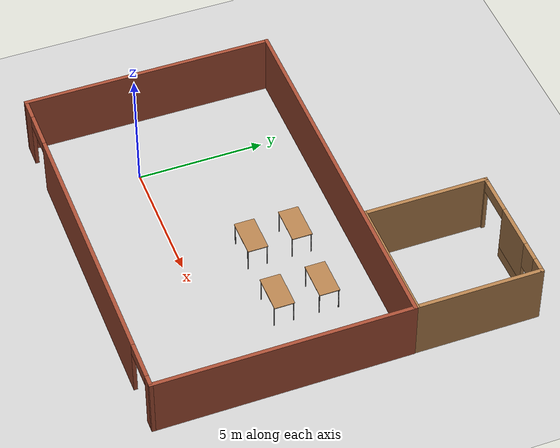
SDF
<sdf version="1.6">
 <world name="default">
  <model name="ground_plane">
   <static>1</static>
   <link name="link">
    <collision name="collision">
     <geometry><plane><normal>0 0 1</normal><size>100 100</size></plane></geometry>
     <surface>
      <contact><collide_bitmask>65535</collide_bitmask></contact>
      <friction><ode><mu>100</mu><mu2>50</mu2></ode></friction>
     </surface>
    </collision>
    <visual name="visual">
     <cast_shadows>0</cast_shadows>
     <geometry><plane><normal>0 0 1</normal><size>100 100</size></plane></geometry>
     <material>
      <script><uri>file://media/materials/scripts/gazebo.material</uri><name>Gazebo/Grey</name></script>
     </material>
    </visual>
   </link>
  </model>
  <model name="classroom">
   <pose>4.425 1.455 0 0 -0 0</pose>
   <link name="Wall_0">
    <collision name="Wall_0_Collision">
     <geometry><box><size>10 0.15 2.5</size></box></geometry>
     <pose>0 0 1.25 0 -0 0</pose>
    </collision>
    <visual name="Wall_0_Visual">
     <pose>0 0 1.25 0 -0 0</pose>
     <geometry><box><size>10 0.15 2.5</size></box></geometry>
     <material>
      <script><uri>file://media/materials/scripts/gazebo.material</uri><name>Gazebo/Bricks</name></script>
      <ambient>1 1 1 1</ambient>
     </material>
     <meta><layer>0</layer></meta>
    </visual>
    <pose>-7.425 0 0 0 -0 1.5708</pose>
   </link>
   <link name="Wall_2">
    <collision name="Wall_2_Collision">
     <geometry><box><size>15 0.15 2.5</size></box></geometry>
     <pose>0 0 1.25 0 -0 0</pose>
    </collision>
    <visual name="Wall_2_Visual">
     <pose>0 0 1.25 0 -0 0</pose>
     <geometry><box><size>15 0.15 2.5</size></box></geometry>
     <material>
      <script><uri>file://media/materials/scripts/gazebo.material</uri><name>Gazebo/Bricks</name></script>
      <ambient>1 1 1 1</ambient>
     </material>
     <meta><layer>0</layer></meta>
    </visual>
    <pose>0 4.925 0 0 -0 0</pose>
   </link>
   <link name="Wall_4">
    <collision name="Wall_4_Collision">
     <geometry><box><size>10 0.15 2.5</size></box></geometry>
     <pose>0 0 1.25 0 -0 0</pose>
    </collision>
    <visual name="Wall_4_Visual">
     <pose>0 0 1.25 0 -0 0</pose>
     <geometry><box><size>10 0.15 2.5</size></box></geometry>
     <material>
      <script><uri>file://media/materials/scripts/gazebo.material</uri><name>Gazebo/Bricks</name></script>
      <ambient>1 1 1 1</ambient>
     </material>
     <meta><layer>0</layer></meta>
    </visual>
    <pose>7.425 0 0 0 0 -1.5708</pose>
   </link>
   <link name="Wall_6">
    <pose>0 -4.925 0 0 -0 0</pose>
    <visual name="Wall_6_Visual_0">
     <pose>-7.03429 0 1.25 0 -0 0</pose>
     <geometry><box><size>0.931421 0.15 2.5</size></box></geometry>
     <material>
      <script><uri>file://media/materials/scripts/gazebo.material</uri><name>Gazebo/Bricks</name></script>
      <ambient>1 1 1 1</ambient>
     </material>
     <meta><layer>0</layer></meta>
    </visual>
    <collision name="Wall_6_Collision_0">
     <geometry><box><size>0.931421 0.15 2.5</size></box></geometry>
     <pose>-7.03429 0 1.25 0 -0 0</pose>
    </collision>
    <visual name="Wall_6_Visual_1">
     <pose>0.218509 0 1.25 0 -0 0</pose>
     <geometry><box><size>10.5742 0.15 2.5</size></box></geometry>
     <material>
      <script><uri>file://media/materials/scripts/gazebo.material</uri><name>Gazebo/Bricks</name></script>
      <ambient>1 1 1 1</ambient>
     </material>
     <meta><layer>0</layer></meta>
    </visual>
    <collision name="Wall_6_Collision_1">
     <geometry><box><size>10.5742 0.15 2.5</size></box></geometry>
     <pose>0.218509 0 1.25 0 -0 0</pose>
    </collision>
    <visual name="Wall_6_Visual_2">
     <pose>7.2528 0 1.25 0 -0 0</pose>
     <geometry><box><size>0.494402 0.15 2.5</size></box></geometry>
     <material>
      <script><uri>file://media/materials/scripts/gazebo.material</uri><name>Gazebo/Bricks</name></script>
      <ambient>1 1 1 1</ambient>
     </material>
     <meta><layer>0</layer></meta>
    </visual>
    <collision name="Wall_6_Collision_2">
     <geometry><box><size>0.494402 0.15 2.5</size></box></geometry>
     <pose>7.2528 0 1.25 0 -0 0</pose>
    </collision>
    <visual name="Wall_6_Visual_3">
     <pose>-5.81858 0 2.25 0 -0 0</pose>
     <geometry><box><size>1.5 0.15 0.5</size></box></geometry>
     <material>
      <script><uri>file://media/materials/scripts/gazebo.material</uri><name>Gazebo/Bricks</name></script>
      <ambient>1 1 1 1</ambient>
     </material>
     <meta><layer>0</layer></meta>
    </visual>
    <collision name="Wall_6_Collision_3">
     <geometry><box><size>1.5 0.15 0.5</size></box></geometry>
     <pose>-5.81858 0 2.25 0 -0 0</pose>
    </collision>
    <visual name="Wall_6_Visual_4">
     <pose>6.2556 0 2.25 0 -0 0</pose>
     <geometry><box><size>1.5 0.15 0.5</size></box></geometry>
     <material>
      <script><uri>file://media/materials/scripts/gazebo.material</uri><name>Gazebo/Bricks</name></script>
      <ambient>1 1 1 1</ambient>
     </material>
     <meta><layer>0</layer></meta>
    </visual>
    <collision name="Wall_6_Collision_4">
     <geometry><box><size>1.5 0.15 0.5</size></box></geometry>
     <pose>6.2556 0 2.25 0 -0 0</pose>
    </collision>
   </link>
   <static>1</static>
  </model>
  <model name="studio">
   <pose>9.41356 8.87492 0 0 -0 3.14131</pose>
   <link name="Wall_10">
    <collision name="Wall_10_Collision">
     <geometry><box><size>5 0.15 2.5</size></box></geometry>
     <pose>0 0 1.25 0 -0 0</pose>
    </collision>
    <visual name="Wall_10_Visual">
     <pose>0 0 1.25 0 -0 0</pose>
     <geometry><box><size>5 0.15 2.5</size></box></geometry>
     <material>
      <script><uri>file://media/materials/scripts/gazebo.material</uri><name>Gazebo/Wood</name></script>
      <ambient>1 1 1 1</ambient>
     </material>
     <meta><layer>0</layer></meta>
    </visual>
    <pose>0 2.42482 0 0 0 -7.3e-05</pose>
   </link>
   <link name="Wall_13">
    <collision name="Wall_13_Collision">
     <geometry><box><size>5 0.15 2.5</size></box></geometry>
     <pose>0 0 1.25 0 -0 0</pose>
    </collision>
    <visual name="Wall_13_Visual">
     <pose>0 0 1.25 0 -0 0</pose>
     <geometry><box><size>5 0.15 2.5</size></box></geometry>
     <material>
      <script><uri>file://media/materials/scripts/gazebo.material</uri><name>Gazebo/Wood</name></script>
      <ambient>1 1 1 1</ambient>
     </material>
     <meta><layer>0</layer></meta>
    </visual>
    <pose>-2.42502 -3e-06 0 0 0 -1.5708</pose>
   </link>
   <link name="Wall_15">
    <pose>-2e-05 -2.425 0 0 -0 0</pose>
    <visual name="Wall_15_Visual_0">
     <pose>-2.17395 0 1.25 0 -0 0</pose>
     <geometry><box><size>0.652095 0.15 2.5</size></box></geometry>
     <material>
      <script><uri>file://media/materials/scripts/gazebo.material</uri><name>Gazebo/Wood</name></script>
      <ambient>1 1 1 1</ambient>
     </material>
     <meta><layer>0</layer></meta>
    </visual>
    <collision name="Wall_15_Collision_0">
     <geometry><box><size>0.652095 0.15 2.5</size></box></geometry>
     <pose>-2.17395 0 1.25 0 -0 0</pose>
    </collision>
    <visual name="Wall_15_Visual_1">
     <pose>2.38574 0 1.25 0 -0 0</pose>
     <geometry><box><size>0.228515 0.15 2.5</size></box></geometry>
     <material>
      <script><uri>file://media/materials/scripts/gazebo.material</uri><name>Gazebo/Wood</name></script>
      <ambient>1 1 1 1</ambient>
     </material>
     <meta><layer>0</layer></meta>
    </visual>
    <collision name="Wall_15_Collision_1">
     <geometry><box><size>0.228515 0.15 2.5</size></box></geometry>
     <pose>2.38574 0 1.25 0 -0 0</pose>
    </collision>
    <visual name="Wall_15_Visual_2">
     <pose>-0.53821 0 0.25 0 -0 0</pose>
     <geometry><box><size>2.61939 0.15 0.5</size></box></geometry>
     <material>
      <script><uri>file://media/materials/scripts/gazebo.material</uri><name>Gazebo/Wood</name></script>
      <ambient>1 1 1 1</ambient>
     </material>
     <meta><layer>0</layer></meta>
    </visual>
    <collision name="Wall_15_Collision_2">
     <geometry><box><size>2.61939 0.15 0.5</size></box></geometry>
     <pose>-0.53821 0 0.25 0 -0 0</pose>
    </collision>
    <visual name="Wall_15_Visual_3">
     <pose>-0.13821 0 1.5 0 -0 0</pose>
     <geometry><box><size>1.81939 0.15 2</size></box></geometry>
     <material>
      <script><uri>file://media/materials/scripts/gazebo.material</uri><name>Gazebo/Wood</name></script>
      <ambient>1 1 1 1</ambient>
     </material>
     <meta><layer>0</layer></meta>
    </visual>
    <collision name="Wall_15_Collision_3">
     <geometry><box><size>1.81939 0.15 2</size></box></geometry>
     <pose>-0.13821 0 1.5 0 -0 0</pose>
    </collision>
    <visual name="Wall_15_Visual_4">
     <pose>-1.4479 0 1.9 0 -0 0</pose>
     <geometry><box><size>0.8 0.15 1.2</size></box></geometry>
     <material>
      <script><uri>file://media/materials/scripts/gazebo.material</uri><name>Gazebo/Wood</name></script>
      <ambient>1 1 1 1</ambient>
     </material>
     <meta><layer>0</layer></meta>
    </visual>
    <collision name="Wall_15_Collision_4">
     <geometry><box><size>0.8 0.15 1.2</size></box></geometry>
     <pose>-1.4479 0 1.9 0 -0 0</pose>
    </collision>
    <visual name="Wall_15_Visual_5">
     <pose>1.52148 0 2.25 0 -0 0</pose>
     <geometry><box><size>1.5 0.15 0.5</size></box></geometry>
     <material>
      <script><uri>file://media/materials/scripts/gazebo.material</uri><name>Gazebo/Wood</name></script>
      <ambient>1 1 1 1</ambient>
     </material>
     <meta><layer>0</layer></meta>
    </visual>
    <collision name="Wall_15_Collision_5">
     <geometry><box><size>1.5 0.15 0.5</size></box></geometry>
     <pose>1.52148 0 2.25 0 -0 0</pose>
    </collision>
   </link>
   <link name="Wall_16">
    <collision name="Wall_16_Collision">
     <geometry><box><size>4.99965 0.15 2.5</size></box></geometry>
     <pose>0 0 1.25 0 -0 0</pose>
    </collision>
    <visual name="Wall_16_Visual">
     <pose>0 0 1.25 0 -0 0</pose>
     <geometry><box><size>4.99965 0.15 2.5</size></box></geometry>
     <material>
      <script><uri>file://media/materials/scripts/gazebo.material</uri><name>Gazebo/Wood</name></script>
      <ambient>1 1 1 1</ambient>
     </material>
     <meta><layer>0</layer></meta>
    </visual>
    <pose>2.425 -0.00018 0 0 -0 1.57079</pose>
   </link>
   <static>1</static>
  </model>
  <model name="table_11">
   <static>1</static>
   <link name="link">
    <collision name="surface">
     <pose>0 0 1 0 -0 0</pose>
     <geometry><box><size>1.5 0.8 0.03</size></box></geometry>
     <surface><friction><ode><mu>0.6</mu><mu2>0.6</mu2></ode></friction></surface>
    </collision>
    <visual name="visual1">
     <pose>0 0 1 0 -0 0</pose>
     <geometry><box><size>1.5 0.8 0.03</size></box></geometry>
     <material>
      <script><uri>file://media/materials/scripts/gazebo.material</uri><name>Gazebo/Wood</name></script>
     </material>
    </visual>
    <collision name="front_left_leg">
     <pose>0.68 0.38 0.5 0 -0 0</pose>
     <geometry><cylinder><radius>0.02</radius><length>1</length></cylinder></geometry>
    </collision>
    <visual name="front_left_leg">
     <pose>0.68 0.38 0.5 0 -0 0</pose>
     <geometry><cylinder><radius>0.02</radius><length>1</length></cylinder></geometry>
     <material>
      <script><uri>file://media/materials/scripts/gazebo.material</uri><name>Gazebo/Grey</name></script>
     </material>
    </visual>
    <collision name="front_right_leg">
     <pose>0.68 -0.38 0.5 0 -0 0</pose>
     <geometry><cylinder><radius>0.02</radius><length>1</length></cylinder></geometry>
    </collision>
    <visual name="front_right_leg">
     <pose>0.68 -0.38 0.5 0 -0 0</pose>
     <geometry><cylinder><radius>0.02</radius><length>1</length></cylinder></geometry>
     <material>
      <script><uri>file://media/materials/scripts/gazebo.material</uri><name>Gazebo/Grey</name></script>
     </material>
    </visual>
    <collision name="back_right_leg">
     <pose>-0.68 -0.38 0.5 0 -0 0</pose>
     <geometry><cylinder><radius>0.02</radius><length>1</length></cylinder></geometry>
    </collision>
    <visual name="back_right_leg">
     <pose>-0.68 -0.38 0.5 0 -0 0</pose>
     <geometry><cylinder><radius>0.02</radius><length>1</length></cylinder></geometry>
     <material>
      <script><uri>file://media/materials/scripts/gazebo.material</uri><name>Gazebo/Grey</name></script>
     </material>
    </visual>
    <collision name="back_left_leg">
     <pose>-0.68 0.38 0.5 0 -0 0</pose>
     <geometry><cylinder><radius>0.02</radius><length>1</length></cylinder></geometry>
    </collision>
    <visual name="back_left_leg">
     <pose>-0.68 0.38 0.5 0 -0 0</pose>
     <geometry><cylinder><radius>0.02</radius><length>1</length></cylinder></geometry>
     <material>
      <script><uri>file://media/materials/scripts/gazebo.material</uri><name>Gazebo/Grey</name></script>
     </material>
    </visual>
   </link>
   <pose>8.2006 2.56286 0 0 -0 0</pose>
  </model>
  <model name="table_12">
   <static>1</static>
   <link name="link">
    <collision name="surface">
     <pose>0 0 1 0 -0 0</pose>
     <geometry><box><size>1.5 0.8 0.03</size></box></geometry>
     <surface><friction><ode><mu>0.6</mu><mu2>0.6</mu2></ode></friction></surface>
    </collision>
    <visual name="visual1">
     <pose>0 0 1 0 -0 0</pose>
     <geometry><box><size>1.5 0.8 0.03</size></box></geometry>
     <material>
      <script><uri>file://media/materials/scripts/gazebo.material</uri><name>Gazebo/Wood</name></script>
     </material>
    </visual>
    <collision name="front_left_leg">
     <pose>0.68 0.38 0.5 0 -0 0</pose>
     <geometry><cylinder><radius>0.02</radius><length>1</length></cylinder></geometry>
    </collision>
    <visual name="front_left_leg">
     <pose>0.68 0.38 0.5 0 -0 0</pose>
     <geometry><cylinder><radius>0.02</radius><length>1</length></cylinder></geometry>
     <material>
      <script><uri>file://media/materials/scripts/gazebo.material</uri><name>Gazebo/Grey</name></script>
     </material>
    </visual>
    <collision name="front_right_leg">
     <pose>0.68 -0.38 0.5 0 -0 0</pose>
     <geometry><cylinder><radius>0.02</radius><length>1</length></cylinder></geometry>
    </collision>
    <visual name="front_right_leg">
     <pose>0.68 -0.38 0.5 0 -0 0</pose>
     <geometry><cylinder><radius>0.02</radius><length>1</length></cylinder></geometry>
     <material>
      <script><uri>file://media/materials/scripts/gazebo.material</uri><name>Gazebo/Grey</name></script>
     </material>
    </visual>
    <collision name="back_right_leg">
     <pose>-0.68 -0.38 0.5 0 -0 0</pose>
     <geometry><cylinder><radius>0.02</radius><length>1</length></cylinder></geometry>
    </collision>
    <visual name="back_right_leg">
     <pose>-0.68 -0.38 0.5 0 -0 0</pose>
     <geometry><cylinder><radius>0.02</radius><length>1</length></cylinder></geometry>
     <material>
      <script><uri>file://media/materials/scripts/gazebo.material</uri><name>Gazebo/Grey</name></script>
     </material>
    </visual>
    <collision name="back_left_leg">
     <pose>-0.68 0.38 0.5 0 -0 0</pose>
     <geometry><cylinder><radius>0.02</radius><length>1</length></cylinder></geometry>
    </collision>
    <visual name="back_left_leg">
     <pose>-0.68 0.38 0.5 0 -0 0</pose>
     <geometry><cylinder><radius>0.02</radius><length>1</length></cylinder></geometry>
     <material>
      <script><uri>file://media/materials/scripts/gazebo.material</uri><name>Gazebo/Grey</name></script>
     </material>
    </visual>
   </link>
   <pose>8.20054 4.32169 0 0 -0 0</pose>
  </model>
  <model name="table_15">
   <static>1</static>
   <link name="link">
    <collision name="surface">
     <pose>0 0 1 0 -0 0</pose>
     <geometry><box><size>1.5 0.8 0.03</size></box></geometry>
     <surface><friction><ode><mu>0.6</mu><mu2>0.6</mu2></ode></friction></surface>
    </collision>
    <visual name="visual1">
     <pose>0 0 1 0 -0 0</pose>
     <geometry><box><size>1.5 0.8 0.03</size></box></geometry>
     <material>
      <script><uri>file://media/materials/scripts/gazebo.material</uri><name>Gazebo/Wood</name></script>
     </material>
    </visual>
    <collision name="front_left_leg">
     <pose>0.68 0.38 0.5 0 -0 0</pose>
     <geometry><cylinder><radius>0.02</radius><length>1</length></cylinder></geometry>
    </collision>
    <visual name="front_left_leg">
     <pose>0.68 0.38 0.5 0 -0 0</pose>
     <geometry><cylinder><radius>0.02</radius><length>1</length></cylinder></geometry>
     <material>
      <script><uri>file://media/materials/scripts/gazebo.material</uri><name>Gazebo/Grey</name></script>
     </material>
    </visual>
    <collision name="front_right_leg">
     <pose>0.68 -0.38 0.5 0 -0 0</pose>
     <geometry><cylinder><radius>0.02</radius><length>1</length></cylinder></geometry>
    </collision>
    <visual name="front_right_leg">
     <pose>0.68 -0.38 0.5 0 -0 0</pose>
     <geometry><cylinder><radius>0.02</radius><length>1</length></cylinder></geometry>
     <material>
      <script><uri>file://media/materials/scripts/gazebo.material</uri><name>Gazebo/Grey</name></script>
     </material>
    </visual>
    <collision name="back_right_leg">
     <pose>-0.68 -0.38 0.5 0 -0 0</pose>
     <geometry><cylinder><radius>0.02</radius><length>1</length></cylinder></geometry>
    </collision>
    <visual name="back_right_leg">
     <pose>-0.68 -0.38 0.5 0 -0 0</pose>
     <geometry><cylinder><radius>0.02</radius><length>1</length></cylinder></geometry>
     <material>
      <script><uri>file://media/materials/scripts/gazebo.material</uri><name>Gazebo/Grey</name></script>
     </material>
    </visual>
    <collision name="back_left_leg">
     <pose>-0.68 0.38 0.5 0 -0 0</pose>
     <geometry><cylinder><radius>0.02</radius><length>1</length></cylinder></geometry>
    </collision>
    <visual name="back_left_leg">
     <pose>-0.68 0.38 0.5 0 -0 0</pose>
     <geometry><cylinder><radius>0.02</radius><length>1</length></cylinder></geometry>
     <material>
      <script><uri>file://media/materials/scripts/gazebo.material</uri><name>Gazebo/Grey</name></script>
     </material>
    </visual>
   </link>
   <pose>5.26825 2.63609 0 0 -0 0</pose>
  </model>
  <model name="table_16">
   <static>1</static>
   <link name="link">
    <collision name="surface">
     <pose>0 0 1 0 -0 0</pose>
     <geometry><box><size>1.5 0.8 0.03</size></box></geometry>
     <surface><friction><ode><mu>0.6</mu><mu2>0.6</mu2></ode></friction></surface>
    </collision>
    <visual name="visual1">
     <pose>0 0 1 0 -0 0</pose>
     <geometry><box><size>1.5 0.8 0.03</size></box></geometry>
     <material>
      <script><uri>file://media/materials/scripts/gazebo.material</uri><name>Gazebo/Wood</name></script>
     </material>
    </visual>
    <collision name="front_left_leg">
     <pose>0.68 0.38 0.5 0 -0 0</pose>
     <geometry><cylinder><radius>0.02</radius><length>1</length></cylinder></geometry>
    </collision>
    <visual name="front_left_leg">
     <pose>0.68 0.38 0.5 0 -0 0</pose>
     <geometry><cylinder><radius>0.02</radius><length>1</length></cylinder></geometry>
     <material>
      <script><uri>file://media/materials/scripts/gazebo.material</uri><name>Gazebo/Grey</name></script>
     </material>
    </visual>
    <collision name="front_right_leg">
     <pose>0.68 -0.38 0.5 0 -0 0</pose>
     <geometry><cylinder><radius>0.02</radius><length>1</length></cylinder></geometry>
    </collision>
    <visual name="front_right_leg">
     <pose>0.68 -0.38 0.5 0 -0 0</pose>
     <geometry><cylinder><radius>0.02</radius><length>1</length></cylinder></geometry>
     <material>
      <script><uri>file://media/materials/scripts/gazebo.material</uri><name>Gazebo/Grey</name></script>
     </material>
    </visual>
    <collision name="back_right_leg">
     <pose>-0.68 -0.38 0.5 0 -0 0</pose>
     <geometry><cylinder><radius>0.02</radius><length>1</length></cylinder></geometry>
    </collision>
    <visual name="back_right_leg">
     <pose>-0.68 -0.38 0.5 0 -0 0</pose>
     <geometry><cylinder><radius>0.02</radius><length>1</length></cylinder></geometry>
     <material>
      <script><uri>file://media/materials/scripts/gazebo.material</uri><name>Gazebo/Grey</name></script>
     </material>
    </visual>
    <collision name="back_left_leg">
     <pose>-0.68 0.38 0.5 0 -0 0</pose>
     <geometry><cylinder><radius>0.02</radius><length>1</length></cylinder></geometry>
    </collision>
    <visual name="back_left_leg">
     <pose>-0.68 0.38 0.5 0 -0 0</pose>
     <geometry><cylinder><radius>0.02</radius><length>1</length></cylinder></geometry>
     <material>
      <script><uri>file://media/materials/scripts/gazebo.material</uri><name>Gazebo/Grey</name></script>
     </material>
    </visual>
   </link>
   <pose>5.26825 4.39562 0 0 -0 0</pose>
  </model>
 </world>
</sdf>
